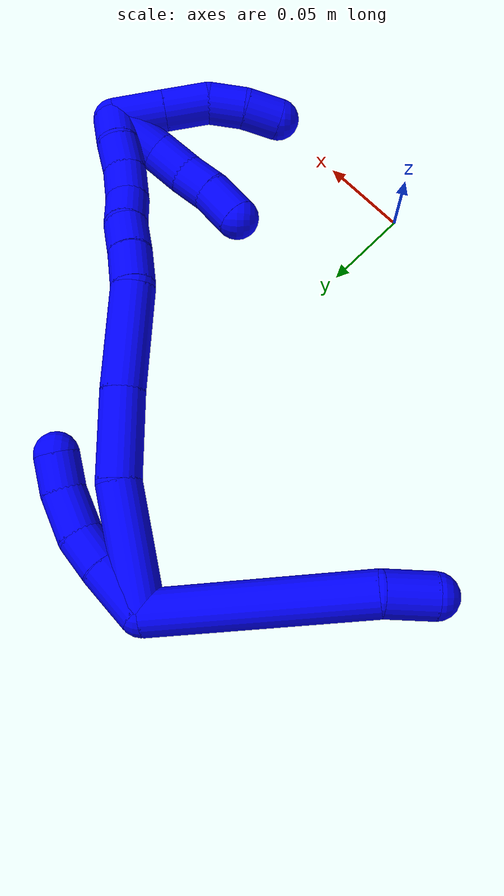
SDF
<sdf version="1.7">
 <world name="default">
  <model name="1">
   <static>0</static>
   <link name="1">
    <collision name="collision-cylinder-e_1_2_8">
     <pose>-0.004104 -0.012345 -0.059781 2.93795 -0.067135 -0.635069</pose>
     <geometry><cylinder><radius>0.0125</radius><length>0.12236</length></cylinder></geometry>
     <surface>
      <friction><ode><mu>1.16</mu><mu2>1.16</mu2><slip1>0</slip1><slip2>0</slip2></ode></friction>
      <contact><ode><kp>1e+06</kp><kd>1</kd><max_vel>0</max_vel><min_depth>0.001</min_depth></ode></contact>
     </surface>
    </collision>
    <visual name="visual-cylinder-e_1_2_8">
     <pose>-0.004104 -0.012345 -0.059781 2.93795 -0.067135 -0.635069</pose>
     <geometry><cylinder><radius>0.0125</radius><length>0.12236</length></cylinder></geometry>
     <material><ambient>0 0 1 1</ambient></material>
    </visual>
    <collision name="collision-cylinder-e_2_8_6">
     <pose>-0.007096 -0.023513 -0.133287 -3.05601 0.080572 -1.51048</pose>
     <geometry><cylinder><radius>0.0125</radius><length>0.02764</length></cylinder></geometry>
     <surface>
      <friction><ode><mu>1.16</mu><mu2>1.16</mu2><slip1>0</slip1><slip2>0</slip2></ode></friction>
      <contact><ode><kp>1e+06</kp><kd>1</kd><max_vel>0</max_vel><min_depth>0.001</min_depth></ode></contact>
     </surface>
    </collision>
    <visual name="visual-cylinder-e_2_8_6">
     <pose>-0.007096 -0.023513 -0.133287 -3.05601 0.080572 -1.51048</pose>
     <geometry><cylinder><radius>0.0125</radius><length>0.02764</length></cylinder></geometry>
     <material><ambient>0 0 1 1</ambient></material>
    </visual>
    <collision name="collision-cylinder-e_1_2_9">
     <pose>0.009877 -0.006652 0.010979 0.544739 0.65581 0.189467</pose>
     <geometry><cylinder><radius>0.0125</radius><length>0.032393</length></cylinder></geometry>
     <surface>
      <friction><ode><mu>1.16</mu><mu2>1.16</mu2><slip1>0</slip1><slip2>0</slip2></ode></friction>
      <contact><ode><kp>1e+06</kp><kd>1</kd><max_vel>0</max_vel><min_depth>0.001</min_depth></ode></contact>
     </surface>
    </collision>
    <visual name="visual-cylinder-e_1_2_9">
     <pose>0.009877 -0.006652 0.010979 0.544739 0.65581 0.189467</pose>
     <geometry><cylinder><radius>0.0125</radius><length>0.032393</length></cylinder></geometry>
     <material><ambient>0 0 1 1</ambient></material>
    </visual>
    <collision name="collision-cylinder-e_2_9_10">
     <pose>0.026715 -0.017657 0.028484 0.588223 0.72576 0.22901</pose>
     <geometry><cylinder><radius>0.0125</radius><length>0.020977</length></cylinder></geometry>
     <surface>
      <friction><ode><mu>1.16</mu><mu2>1.16</mu2><slip1>0</slip1><slip2>0</slip2></ode></friction>
      <contact><ode><kp>1e+06</kp><kd>1</kd><max_vel>0</max_vel><min_depth>0.001</min_depth></ode></contact>
     </surface>
    </collision>
    <visual name="visual-cylinder-e_2_9_10">
     <pose>0.026715 -0.017657 0.028484 0.588223 0.72576 0.22901</pose>
     <geometry><cylinder><radius>0.0125</radius><length>0.020977</length></cylinder></geometry>
     <material><ambient>0 0 1 1</ambient></material>
    </visual>
    <collision name="collision-cylinder-e_3_10_11">
     <pose>0.042689 -0.029679 0.040418 0.956717 0.765271 0.411478</pose>
     <geometry><cylinder><radius>0.0125</radius><length>0.026019</length></cylinder></geometry>
     <surface>
      <friction><ode><mu>1.16</mu><mu2>1.16</mu2><slip1>0</slip1><slip2>0</slip2></ode></friction>
      <contact><ode><kp>1e+06</kp><kd>1</kd><max_vel>0</max_vel><min_depth>0.001</min_depth></ode></contact>
     </surface>
    </collision>
    <visual name="visual-cylinder-e_3_10_11">
     <pose>0.042689 -0.029679 0.040418 0.956717 0.765271 0.411478</pose>
     <geometry><cylinder><radius>0.0125</radius><length>0.026019</length></cylinder></geometry>
     <material><ambient>0 0 1 1</ambient></material>
    </visual>
    <collision name="collision-cylinder-e_4_11_5">
     <pose>0.057991 -0.045135 0.048266 1.26689 0.656635 0.490278</pose>
     <geometry><cylinder><radius>0.0125</radius><length>0.02061</length></cylinder></geometry>
     <surface>
      <friction><ode><mu>1.16</mu><mu2>1.16</mu2><slip1>0</slip1><slip2>0</slip2></ode></friction>
      <contact><ode><kp>1e+06</kp><kd>1</kd><max_vel>0</max_vel><min_depth>0.001</min_depth></ode></contact>
     </surface>
    </collision>
    <visual name="visual-cylinder-e_4_11_5">
     <pose>0.057991 -0.045135 0.048266 1.26689 0.656635 0.490278</pose>
     <geometry><cylinder><radius>0.0125</radius><length>0.02061</length></cylinder></geometry>
     <material><ambient>0 0 1 1</ambient></material>
    </visual>
    <collision name="collision-cylinder-e_1_2_12">
     <pose>0.022365 -0.025089 0.007729 1.27196 0.705599 0.530873</pose>
     <geometry><cylinder><radius>0.0125</radius><length>0.068975</length></cylinder></geometry>
     <surface>
      <friction><ode><mu>1.16</mu><mu2>1.16</mu2><slip1>0</slip1><slip2>0</slip2></ode></friction>
      <contact><ode><kp>1e+06</kp><kd>1</kd><max_vel>0</max_vel><min_depth>0.001</min_depth></ode></contact>
     </surface>
    </collision>
    <visual name="visual-cylinder-e_1_2_12">
     <pose>0.022365 -0.025089 0.007729 1.27196 0.705599 0.530873</pose>
     <geometry><cylinder><radius>0.0125</radius><length>0.068975</length></cylinder></geometry>
     <material><ambient>0 0 1 1</ambient></material>
    </visual>
    <collision name="collision-cylinder-e_2_12_13">
     <pose>0.062107 -0.067505 0.01574 1.55451 0.786795 0.775327</pose>
     <geometry><cylinder><radius>0.0125</radius><length>0.049083</length></cylinder></geometry>
     <surface>
      <friction><ode><mu>1.16</mu><mu2>1.16</mu2><slip1>0</slip1><slip2>0</slip2></ode></friction>
      <contact><ode><kp>1e+06</kp><kd>1</kd><max_vel>0</max_vel><min_depth>0.001</min_depth></ode></contact>
     </surface>
    </collision>
    <visual name="visual-cylinder-e_2_12_13">
     <pose>0.062107 -0.067505 0.01574 1.55451 0.786795 0.775327</pose>
     <geometry><cylinder><radius>0.0125</radius><length>0.049083</length></cylinder></geometry>
     <material><ambient>0 0 1 1</ambient></material>
    </visual>
    <collision name="collision-cylinder-e_3_13_14">
     <pose>0.099725 -0.105926 0.014764 1.63036 0.763867 0.805982</pose>
     <geometry><cylinder><radius>0.0125</radius><length>0.058523</length></cylinder></geometry>
     <surface>
      <friction><ode><mu>1.16</mu><mu2>1.16</mu2><slip1>0</slip1><slip2>0</slip2></ode></friction>
      <contact><ode><kp>1e+06</kp><kd>1</kd><max_vel>0</max_vel><min_depth>0.001</min_depth></ode></contact>
     </surface>
    </collision>
    <visual name="visual-cylinder-e_3_13_14">
     <pose>0.099725 -0.105926 0.014764 1.63036 0.763867 0.805982</pose>
     <geometry><cylinder><radius>0.0125</radius><length>0.058523</length></cylinder></geometry>
     <material><ambient>0 0 1 1</ambient></material>
    </visual>
    <collision name="collision-cylinder-e_4_14_15">
     <pose>0.129593 -0.132763 0.015134 1.29457 1.01576 0.796503</pose>
     <geometry><cylinder><radius>0.0125</radius><length>0.022654</length></cylinder></geometry>
     <surface>
      <friction><ode><mu>1.16</mu><mu2>1.16</mu2><slip1>0</slip1><slip2>0</slip2></ode></friction>
      <contact><ode><kp>1e+06</kp><kd>1</kd><max_vel>0</max_vel><min_depth>0.001</min_depth></ode></contact>
     </surface>
    </collision>
    <visual name="visual-cylinder-e_4_14_15">
     <pose>0.129593 -0.132763 0.015134 1.29457 1.01576 0.796503</pose>
     <geometry><cylinder><radius>0.0125</radius><length>0.022654</length></cylinder></geometry>
     <material><ambient>0 0 1 1</ambient></material>
    </visual>
    <collision name="collision-cylinder-e_5_15_16">
     <pose>0.147904 -0.143077 0.018695 1.17086 1.05161 0.734514</pose>
     <geometry><cylinder><radius>0.0125</radius><length>0.020006</length></cylinder></geometry>
     <surface>
      <friction><ode><mu>1.16</mu><mu2>1.16</mu2><slip1>0</slip1><slip2>0</slip2></ode></friction>
      <contact><ode><kp>1e+06</kp><kd>1</kd><max_vel>0</max_vel><min_depth>0.001</min_depth></ode></contact>
     </surface>
    </collision>
    <visual name="visual-cylinder-e_5_15_16">
     <pose>0.147904 -0.143077 0.018695 1.17086 1.05161 0.734514</pose>
     <geometry><cylinder><radius>0.0125</radius><length>0.020006</length></cylinder></geometry>
     <material><ambient>0 0 1 1</ambient></material>
    </visual>
    <collision name="collision-cylinder-e_6_16_17">
     <pose>0.166291 -0.151173 0.020997 1.4662 1.22063 1.1241</pose>
     <geometry><cylinder><radius>0.0125</radius><length>0.020658</length></cylinder></geometry>
     <surface>
      <friction><ode><mu>1.16</mu><mu2>1.16</mu2><slip1>0</slip1><slip2>0</slip2></ode></friction>
      <contact><ode><kp>1e+06</kp><kd>1</kd><max_vel>0</max_vel><min_depth>0.001</min_depth></ode></contact>
     </surface>
    </collision>
    <visual name="visual-cylinder-e_6_16_17">
     <pose>0.166291 -0.151173 0.020997 1.4662 1.22063 1.1241</pose>
     <geometry><cylinder><radius>0.0125</radius><length>0.020658</length></cylinder></geometry>
     <material><ambient>0 0 1 1</ambient></material>
    </visual>
    <collision name="collision-cylinder-e_7_17_18">
     <pose>0.184276 -0.160149 0.022847 1.3058 0.972238 0.768115</pose>
     <geometry><cylinder><radius>0.0125</radius><length>0.020051</length></cylinder></geometry>
     <surface>
      <friction><ode><mu>1.16</mu><mu2>1.16</mu2><slip1>0</slip1><slip2>0</slip2></ode></friction>
      <contact><ode><kp>1e+06</kp><kd>1</kd><max_vel>0</max_vel><min_depth>0.001</min_depth></ode></contact>
     </surface>
    </collision>
    <visual name="visual-cylinder-e_7_17_18">
     <pose>0.184276 -0.160149 0.022847 1.3058 0.972238 0.768115</pose>
     <geometry><cylinder><radius>0.0125</radius><length>0.020051</length></cylinder></geometry>
     <material><ambient>0 0 1 1</ambient></material>
    </visual>
    <collision name="collision-cylinder-e_8_18_19">
     <pose>0.200255 -0.171466 0.026938 1.15185 0.875542 0.590133</pose>
     <geometry><cylinder><radius>0.0125</radius><length>0.020045</length></cylinder></geometry>
     <surface>
      <friction><ode><mu>1.16</mu><mu2>1.16</mu2><slip1>0</slip1><slip2>0</slip2></ode></friction>
      <contact><ode><kp>1e+06</kp><kd>1</kd><max_vel>0</max_vel><min_depth>0.001</min_depth></ode></contact>
     </surface>
    </collision>
    <visual name="visual-cylinder-e_8_18_19">
     <pose>0.200255 -0.171466 0.026938 1.15185 0.875542 0.590133</pose>
     <geometry><cylinder><radius>0.0125</radius><length>0.020045</length></cylinder></geometry>
     <material><ambient>0 0 1 1</ambient></material>
    </visual>
    <collision name="collision-cylinder-e_9_19_1">
     <pose>0.216772 -0.181644 0.031457 1.15441 1.07973 0.744088</pose>
     <geometry><cylinder><radius>0.0125</radius><length>0.020005</length></cylinder></geometry>
     <surface>
      <friction><ode><mu>1.16</mu><mu2>1.16</mu2><slip1>0</slip1><slip2>0</slip2></ode></friction>
      <contact><ode><kp>1e+06</kp><kd>1</kd><max_vel>0</max_vel><min_depth>0.001</min_depth></ode></contact>
     </surface>
    </collision>
    <visual name="visual-cylinder-e_9_19_1">
     <pose>0.216772 -0.181644 0.031457 1.15441 1.07973 0.744088</pose>
     <geometry><cylinder><radius>0.0125</radius><length>0.020005</length></cylinder></geometry>
     <material><ambient>0 0 1 1</ambient></material>
    </visual>
    <collision name="collision-cylinder-e_1_1_20">
     <pose>0.227992 -0.188341 0.018688 2.98063 0.159988 1.56469</pose>
     <geometry><cylinder><radius>0.0125</radius><length>0.030123</length></cylinder></geometry>
     <surface>
      <friction><ode><mu>1.16</mu><mu2>1.16</mu2><slip1>0</slip1><slip2>0</slip2></ode></friction>
      <contact><ode><kp>1e+06</kp><kd>1</kd><max_vel>0</max_vel><min_depth>0.001</min_depth></ode></contact>
     </surface>
    </collision>
    <visual name="visual-cylinder-e_1_1_20">
     <pose>0.227992 -0.188341 0.018688 2.98063 0.159988 1.56469</pose>
     <geometry><cylinder><radius>0.0125</radius><length>0.030123</length></cylinder></geometry>
     <material><ambient>0 0 1 1</ambient></material>
    </visual>
    <collision name="collision-cylinder-e_2_20_21">
     <pose>0.232413 -0.192822 -0.009166 2.98376 0.150412 1.52245</pose>
     <geometry><cylinder><radius>0.0125</radius><length>0.026992</length></cylinder></geometry>
     <surface>
      <friction><ode><mu>1.16</mu><mu2>1.16</mu2><slip1>0</slip1><slip2>0</slip2></ode></friction>
      <contact><ode><kp>1e+06</kp><kd>1</kd><max_vel>0</max_vel><min_depth>0.001</min_depth></ode></contact>
     </surface>
    </collision>
    <visual name="visual-cylinder-e_2_20_21">
     <pose>0.232413 -0.192822 -0.009166 2.98376 0.150412 1.52245</pose>
     <geometry><cylinder><radius>0.0125</radius><length>0.026992</length></cylinder></geometry>
     <material><ambient>0 0 1 1</ambient></material>
    </visual>
    <collision name="collision-cylinder-e_3_21_22">
     <pose>0.234047 -0.193771 -0.03304 -3.03466 -0.036112 0.650881</pose>
     <geometry><cylinder><radius>0.0125</radius><length>0.021527</length></cylinder></geometry>
     <surface>
      <friction><ode><mu>1.16</mu><mu2>1.16</mu2><slip1>0</slip1><slip2>0</slip2></ode></friction>
      <contact><ode><kp>1e+06</kp><kd>1</kd><max_vel>0</max_vel><min_depth>0.001</min_depth></ode></contact>
     </surface>
    </collision>
    <visual name="visual-cylinder-e_3_21_22">
     <pose>0.234047 -0.193771 -0.03304 -3.03466 -0.036112 0.650881</pose>
     <geometry><cylinder><radius>0.0125</radius><length>0.021527</length></cylinder></geometry>
     <material><ambient>0 0 1 1</ambient></material>
    </visual>
    <collision name="collision-cylinder-e_4_22_4">
     <pose>0.233855 -0.189467 -0.053935 -2.84149 0.018405 -0.121592</pose>
     <geometry><cylinder><radius>0.0125</radius><length>0.021358</length></cylinder></geometry>
     <surface>
      <friction><ode><mu>1.16</mu><mu2>1.16</mu2><slip1>0</slip1><slip2>0</slip2></ode></friction>
      <contact><ode><kp>1e+06</kp><kd>1</kd><max_vel>0</max_vel><min_depth>0.001</min_depth></ode></contact>
     </surface>
    </collision>
    <visual name="visual-cylinder-e_4_22_4">
     <pose>0.233855 -0.189467 -0.053935 -2.84149 0.018405 -0.121592</pose>
     <geometry><cylinder><radius>0.0125</radius><length>0.021358</length></cylinder></geometry>
     <material><ambient>0 0 1 1</ambient></material>
    </visual>
    <collision name="collision-cylinder-e_1_1_23">
     <pose>0.220174 -0.178222 0.01989 -2.62043 -0.335516 1.13168</pose>
     <geometry><cylinder><radius>0.0125</radius><length>0.032911</length></cylinder></geometry>
     <surface>
      <friction><ode><mu>1.16</mu><mu2>1.16</mu2><slip1>0</slip1><slip2>0</slip2></ode></friction>
      <contact><ode><kp>1e+06</kp><kd>1</kd><max_vel>0</max_vel><min_depth>0.001</min_depth></ode></contact>
     </surface>
    </collision>
    <visual name="visual-cylinder-e_1_1_23">
     <pose>0.220174 -0.178222 0.01989 -2.62043 -0.335516 1.13168</pose>
     <geometry><cylinder><radius>0.0125</radius><length>0.032911</length></cylinder></geometry>
     <material><ambient>0 0 1 1</ambient></material>
    </visual>
    <collision name="collision-cylinder-e_2_23_24">
     <pose>0.208881 -0.165714 -0.00237 -2.64398 -0.531304 1.63924</pose>
     <geometry><cylinder><radius>0.0125</radius><length>0.023192</length></cylinder></geometry>
     <surface>
      <friction><ode><mu>1.16</mu><mu2>1.16</mu2><slip1>0</slip1><slip2>0</slip2></ode></friction>
      <contact><ode><kp>1e+06</kp><kd>1</kd><max_vel>0</max_vel><min_depth>0.001</min_depth></ode></contact>
     </surface>
    </collision>
    <visual name="visual-cylinder-e_2_23_24">
     <pose>0.208881 -0.165714 -0.00237 -2.64398 -0.531304 1.63924</pose>
     <geometry><cylinder><radius>0.0125</radius><length>0.023192</length></cylinder></geometry>
     <material><ambient>0 0 1 1</ambient></material>
    </visual>
    <collision name="collision-cylinder-e_3_24_25">
     <pose>0.197041 -0.158034 -0.018705 -2.77391 -0.635298 2.11219</pose>
     <geometry><cylinder><radius>0.0125</radius><length>0.020102</length></cylinder></geometry>
     <surface>
      <friction><ode><mu>1.16</mu><mu2>1.16</mu2><slip1>0</slip1><slip2>0</slip2></ode></friction>
      <contact><ode><kp>1e+06</kp><kd>1</kd><max_vel>0</max_vel><min_depth>0.001</min_depth></ode></contact>
     </surface>
    </collision>
    <visual name="visual-cylinder-e_3_24_25">
     <pose>0.197041 -0.158034 -0.018705 -2.77391 -0.635298 2.11219</pose>
     <geometry><cylinder><radius>0.0125</radius><length>0.020102</length></cylinder></geometry>
     <material><ambient>0 0 1 1</ambient></material>
    </visual>
    <collision name="collision-cylinder-e_4_25_3">
     <pose>0.183343 -0.15048 -0.03401 -2.60194 -0.707585 1.85607</pose>
     <geometry><cylinder><radius>0.0125</radius><length>0.023795</length></cylinder></geometry>
     <surface>
      <friction><ode><mu>1.16</mu><mu2>1.16</mu2><slip1>0</slip1><slip2>0</slip2></ode></friction>
      <contact><ode><kp>1e+06</kp><kd>1</kd><max_vel>0</max_vel><min_depth>0.001</min_depth></ode></contact>
     </surface>
    </collision>
    <visual name="visual-cylinder-e_4_25_3">
     <pose>0.183343 -0.15048 -0.03401 -2.60194 -0.707585 1.85607</pose>
     <geometry><cylinder><radius>0.0125</radius><length>0.023795</length></cylinder></geometry>
     <material><ambient>0 0 1 1</ambient></material>
    </visual>
    <collision name="collision-sphere-3">
     <pose>0.17561 -0.145834 -0.041767 0 -0 0</pose>
     <geometry><sphere><radius>0.0125</radius></sphere></geometry>
     <surface>
      <friction><ode><mu>1.16</mu><mu2>1.16</mu2><slip1>0</slip1><slip2>0</slip2></ode></friction>
      <contact><ode><kp>1e+06</kp><kd>1</kd><max_vel>0</max_vel><min_depth>0.001</min_depth></ode></contact>
     </surface>
    </collision>
    <visual name="visual-sphere-3">
     <pose>0.17561 -0.145834 -0.041767 0 -0 0</pose>
     <geometry><sphere><radius>0.0125</radius></sphere></geometry>
     <material><ambient>0 0 1 1</ambient></material>
    </visual>
    <collision name="collision-sphere-25">
     <pose>0.191077 -0.155126 -0.026254 0 -0 0</pose>
     <geometry><sphere><radius>0.0125</radius></sphere></geometry>
     <surface>
      <friction><ode><mu>1.16</mu><mu2>1.16</mu2><slip1>0</slip1><slip2>0</slip2></ode></friction>
      <contact><ode><kp>1e+06</kp><kd>1</kd><max_vel>0</max_vel><min_depth>0.001</min_depth></ode></contact>
     </surface>
    </collision>
    <visual name="visual-sphere-25">
     <pose>0.191077 -0.155126 -0.026254 0 -0 0</pose>
     <geometry><sphere><radius>0.0125</radius></sphere></geometry>
     <material><ambient>0 0 1 1</ambient></material>
    </visual>
    <collision name="collision-sphere-24">
     <pose>0.203006 -0.160942 -0.011155 0 -0 0</pose>
     <geometry><sphere><radius>0.0125</radius></sphere></geometry>
     <surface>
      <friction><ode><mu>1.16</mu><mu2>1.16</mu2><slip1>0</slip1><slip2>0</slip2></ode></friction>
      <contact><ode><kp>1e+06</kp><kd>1</kd><max_vel>0</max_vel><min_depth>0.001</min_depth></ode></contact>
     </surface>
    </collision>
    <visual name="visual-sphere-24">
     <pose>0.203006 -0.160942 -0.011155 0 -0 0</pose>
     <geometry><sphere><radius>0.0125</radius></sphere></geometry>
     <material><ambient>0 0 1 1</ambient></material>
    </visual>
    <collision name="collision-sphere-23">
     <pose>0.214756 -0.170486 0.006415 0 -0 0</pose>
     <geometry><sphere><radius>0.0125</radius></sphere></geometry>
     <surface>
      <friction><ode><mu>1.16</mu><mu2>1.16</mu2><slip1>0</slip1><slip2>0</slip2></ode></friction>
      <contact><ode><kp>1e+06</kp><kd>1</kd><max_vel>0</max_vel><min_depth>0.001</min_depth></ode></contact>
     </surface>
    </collision>
    <visual name="visual-sphere-23">
     <pose>0.214756 -0.170486 0.006415 0 -0 0</pose>
     <geometry><sphere><radius>0.0125</radius></sphere></geometry>
     <material><ambient>0 0 1 1</ambient></material>
    </visual>
    <collision name="collision-sphere-4">
     <pose>0.234052 -0.186311 -0.064134 0 -0 0</pose>
     <geometry><sphere><radius>0.0125</radius></sphere></geometry>
     <surface>
      <friction><ode><mu>1.16</mu><mu2>1.16</mu2><slip1>0</slip1><slip2>0</slip2></ode></friction>
      <contact><ode><kp>1e+06</kp><kd>1</kd><max_vel>0</max_vel><min_depth>0.001</min_depth></ode></contact>
     </surface>
    </collision>
    <visual name="visual-sphere-4">
     <pose>0.234052 -0.186311 -0.064134 0 -0 0</pose>
     <geometry><sphere><radius>0.0125</radius></sphere></geometry>
     <material><ambient>0 0 1 1</ambient></material>
    </visual>
    <collision name="collision-sphere-22">
     <pose>0.233658 -0.192623 -0.043735 0 -0 0</pose>
     <geometry><sphere><radius>0.0125</radius></sphere></geometry>
     <surface>
      <friction><ode><mu>1.16</mu><mu2>1.16</mu2><slip1>0</slip1><slip2>0</slip2></ode></friction>
      <contact><ode><kp>1e+06</kp><kd>1</kd><max_vel>0</max_vel><min_depth>0.001</min_depth></ode></contact>
     </surface>
    </collision>
    <visual name="visual-sphere-22">
     <pose>0.233658 -0.192623 -0.043735 0 -0 0</pose>
     <geometry><sphere><radius>0.0125</radius></sphere></geometry>
     <material><ambient>0 0 1 1</ambient></material>
    </visual>
    <collision name="collision-sphere-21">
     <pose>0.234436 -0.194919 -0.022344 0 -0 0</pose>
     <geometry><sphere><radius>0.0125</radius></sphere></geometry>
     <surface>
      <friction><ode><mu>1.16</mu><mu2>1.16</mu2><slip1>0</slip1><slip2>0</slip2></ode></friction>
      <contact><ode><kp>1e+06</kp><kd>1</kd><max_vel>0</max_vel><min_depth>0.001</min_depth></ode></contact>
     </surface>
    </collision>
    <visual name="visual-sphere-21">
     <pose>0.234436 -0.194919 -0.022344 0 -0 0</pose>
     <geometry><sphere><radius>0.0125</radius></sphere></geometry>
     <material><ambient>0 0 1 1</ambient></material>
    </visual>
    <collision name="collision-sphere-20">
     <pose>0.230391 -0.190724 0.004012 0 -0 0</pose>
     <geometry><sphere><radius>0.0125</radius></sphere></geometry>
     <surface>
      <friction><ode><mu>1.16</mu><mu2>1.16</mu2><slip1>0</slip1><slip2>0</slip2></ode></friction>
      <contact><ode><kp>1e+06</kp><kd>1</kd><max_vel>0</max_vel><min_depth>0.001</min_depth></ode></contact>
     </surface>
    </collision>
    <visual name="visual-sphere-20">
     <pose>0.230391 -0.190724 0.004012 0 -0 0</pose>
     <geometry><sphere><radius>0.0125</radius></sphere></geometry>
     <material><ambient>0 0 1 1</ambient></material>
    </visual>
    <collision name="collision-sphere-11">
     <pose>0.051701 -0.037347 0.045824 0 -0 0</pose>
     <geometry><sphere><radius>0.0125</radius></sphere></geometry>
     <surface>
      <friction><ode><mu>1.16</mu><mu2>1.16</mu2><slip1>0</slip1><slip2>0</slip2></ode></friction>
      <contact><ode><kp>1e+06</kp><kd>1</kd><max_vel>0</max_vel><min_depth>0.001</min_depth></ode></contact>
     </surface>
    </collision>
    <visual name="visual-sphere-11">
     <pose>0.051701 -0.037347 0.045824 0 -0 0</pose>
     <geometry><sphere><radius>0.0125</radius></sphere></geometry>
     <material><ambient>0 0 1 1</ambient></material>
    </visual>
    <collision name="collision-sphere-10">
     <pose>0.033676 -0.022011 0.035011 0 -0 0</pose>
     <geometry><sphere><radius>0.0125</radius></sphere></geometry>
     <surface>
      <friction><ode><mu>1.16</mu><mu2>1.16</mu2><slip1>0</slip1><slip2>0</slip2></ode></friction>
      <contact><ode><kp>1e+06</kp><kd>1</kd><max_vel>0</max_vel><min_depth>0.001</min_depth></ode></contact>
     </surface>
    </collision>
    <visual name="visual-sphere-10">
     <pose>0.033676 -0.022011 0.035011 0 -0 0</pose>
     <geometry><sphere><radius>0.0125</radius></sphere></geometry>
     <material><ambient>0 0 1 1</ambient></material>
    </visual>
    <collision name="collision-sphere-6">
     <pose>-0.005984 -0.022335 -0.147011 0 -0 0</pose>
     <geometry><sphere><radius>0.0125</radius></sphere></geometry>
     <surface>
      <friction><ode><mu>1.16</mu><mu2>1.16</mu2><slip1>0</slip1><slip2>0</slip2></ode></friction>
      <contact><ode><kp>1e+06</kp><kd>1</kd><max_vel>0</max_vel><min_depth>0.001</min_depth></ode></contact>
     </surface>
    </collision>
    <visual name="visual-sphere-6">
     <pose>-0.005984 -0.022335 -0.147011 0 -0 0</pose>
     <geometry><sphere><radius>0.0125</radius></sphere></geometry>
     <material><ambient>0 0 1 1</ambient></material>
    </visual>
    <collision name="collision-sphere-9">
     <pose>0.019754 -0.013304 0.021958 0 -0 0</pose>
     <geometry><sphere><radius>0.0125</radius></sphere></geometry>
     <surface>
      <friction><ode><mu>1.16</mu><mu2>1.16</mu2><slip1>0</slip1><slip2>0</slip2></ode></friction>
      <contact><ode><kp>1e+06</kp><kd>1</kd><max_vel>0</max_vel><min_depth>0.001</min_depth></ode></contact>
     </surface>
    </collision>
    <visual name="visual-sphere-9">
     <pose>0.019754 -0.013304 0.021958 0 -0 0</pose>
     <geometry><sphere><radius>0.0125</radius></sphere></geometry>
     <material><ambient>0 0 1 1</ambient></material>
    </visual>
    <collision name="collision-sphere-2">
     <geometry><sphere><radius>0.0125</radius></sphere></geometry>
     <surface>
      <friction><ode><mu>1.16</mu><mu2>1.16</mu2><slip1>0</slip1><slip2>0</slip2></ode></friction>
      <contact><ode><kp>1e+06</kp><kd>1</kd><max_vel>0</max_vel><min_depth>0.001</min_depth></ode></contact>
     </surface>
    </collision>
    <visual name="visual-sphere-2">
     <geometry><sphere><radius>0.0125</radius></sphere></geometry>
     <material><ambient>0 0 1 1</ambient></material>
    </visual>
    <collision name="collision-sphere-19">
     <pose>0.207951 -0.17733 0.029549 0 -0 0</pose>
     <geometry><sphere><radius>0.0125</radius></sphere></geometry>
     <surface>
      <friction><ode><mu>1.16</mu><mu2>1.16</mu2><slip1>0</slip1><slip2>0</slip2></ode></friction>
      <contact><ode><kp>1e+06</kp><kd>1</kd><max_vel>0</max_vel><min_depth>0.001</min_depth></ode></contact>
     </surface>
    </collision>
    <visual name="visual-sphere-19">
     <pose>0.207951 -0.17733 0.029549 0 -0 0</pose>
     <geometry><sphere><radius>0.0125</radius></sphere></geometry>
     <material><ambient>0 0 1 1</ambient></material>
    </visual>
    <collision name="collision-sphere-8">
     <pose>-0.008208 -0.02469 -0.119562 0 -0 0</pose>
     <geometry><sphere><radius>0.0125</radius></sphere></geometry>
     <surface>
      <friction><ode><mu>1.16</mu><mu2>1.16</mu2><slip1>0</slip1><slip2>0</slip2></ode></friction>
      <contact><ode><kp>1e+06</kp><kd>1</kd><max_vel>0</max_vel><min_depth>0.001</min_depth></ode></contact>
     </surface>
    </collision>
    <visual name="visual-sphere-8">
     <pose>-0.008208 -0.02469 -0.119562 0 -0 0</pose>
     <geometry><sphere><radius>0.0125</radius></sphere></geometry>
     <material><ambient>0 0 1 1</ambient></material>
    </visual>
    <collision name="collision-sphere-5">
     <pose>0.064282 -0.052923 0.050709 0 -0 0</pose>
     <geometry><sphere><radius>0.0125</radius></sphere></geometry>
     <surface>
      <friction><ode><mu>1.16</mu><mu2>1.16</mu2><slip1>0</slip1><slip2>0</slip2></ode></friction>
      <contact><ode><kp>1e+06</kp><kd>1</kd><max_vel>0</max_vel><min_depth>0.001</min_depth></ode></contact>
     </surface>
    </collision>
    <visual name="visual-sphere-5">
     <pose>0.064282 -0.052923 0.050709 0 -0 0</pose>
     <geometry><sphere><radius>0.0125</radius></sphere></geometry>
     <material><ambient>0 0 1 1</ambient></material>
    </visual>
    <collision name="collision-sphere-12">
     <pose>0.044729 -0.050178 0.015458 0 -0 0</pose>
     <geometry><sphere><radius>0.0125</radius></sphere></geometry>
     <surface>
      <friction><ode><mu>1.16</mu><mu2>1.16</mu2><slip1>0</slip1><slip2>0</slip2></ode></friction>
      <contact><ode><kp>1e+06</kp><kd>1</kd><max_vel>0</max_vel><min_depth>0.001</min_depth></ode></contact>
     </surface>
    </collision>
    <visual name="visual-sphere-12">
     <pose>0.044729 -0.050178 0.015458 0 -0 0</pose>
     <geometry><sphere><radius>0.0125</radius></sphere></geometry>
     <material><ambient>0 0 1 1</ambient></material>
    </visual>
    <collision name="collision-sphere-13">
     <pose>0.079485 -0.084832 0.016022 0 -0 0</pose>
     <geometry><sphere><radius>0.0125</radius></sphere></geometry>
     <surface>
      <friction><ode><mu>1.16</mu><mu2>1.16</mu2><slip1>0</slip1><slip2>0</slip2></ode></friction>
      <contact><ode><kp>1e+06</kp><kd>1</kd><max_vel>0</max_vel><min_depth>0.001</min_depth></ode></contact>
     </surface>
    </collision>
    <visual name="visual-sphere-13">
     <pose>0.079485 -0.084832 0.016022 0 -0 0</pose>
     <geometry><sphere><radius>0.0125</radius></sphere></geometry>
     <material><ambient>0 0 1 1</ambient></material>
    </visual>
    <collision name="collision-sphere-14">
     <pose>0.119966 -0.12702 0.013506 0 -0 0</pose>
     <geometry><sphere><radius>0.0125</radius></sphere></geometry>
     <surface>
      <friction><ode><mu>1.16</mu><mu2>1.16</mu2><slip1>0</slip1><slip2>0</slip2></ode></friction>
      <contact><ode><kp>1e+06</kp><kd>1</kd><max_vel>0</max_vel><min_depth>0.001</min_depth></ode></contact>
     </surface>
    </collision>
    <visual name="visual-sphere-14">
     <pose>0.119966 -0.12702 0.013506 0 -0 0</pose>
     <geometry><sphere><radius>0.0125</radius></sphere></geometry>
     <material><ambient>0 0 1 1</ambient></material>
    </visual>
    <collision name="collision-sphere-15">
     <pose>0.139219 -0.138506 0.016762 0 -0 0</pose>
     <geometry><sphere><radius>0.0125</radius></sphere></geometry>
     <surface>
      <friction><ode><mu>1.16</mu><mu2>1.16</mu2><slip1>0</slip1><slip2>0</slip2></ode></friction>
      <contact><ode><kp>1e+06</kp><kd>1</kd><max_vel>0</max_vel><min_depth>0.001</min_depth></ode></contact>
     </surface>
    </collision>
    <visual name="visual-sphere-15">
     <pose>0.139219 -0.138506 0.016762 0 -0 0</pose>
     <geometry><sphere><radius>0.0125</radius></sphere></geometry>
     <material><ambient>0 0 1 1</ambient></material>
    </visual>
    <collision name="collision-sphere-16">
     <pose>0.156589 -0.147649 0.020627 0 -0 0</pose>
     <geometry><sphere><radius>0.0125</radius></sphere></geometry>
     <surface>
      <friction><ode><mu>1.16</mu><mu2>1.16</mu2><slip1>0</slip1><slip2>0</slip2></ode></friction>
      <contact><ode><kp>1e+06</kp><kd>1</kd><max_vel>0</max_vel><min_depth>0.001</min_depth></ode></contact>
     </surface>
    </collision>
    <visual name="visual-sphere-16">
     <pose>0.156589 -0.147649 0.020627 0 -0 0</pose>
     <geometry><sphere><radius>0.0125</radius></sphere></geometry>
     <material><ambient>0 0 1 1</ambient></material>
    </visual>
    <collision name="collision-sphere-17">
     <pose>0.175994 -0.154697 0.021367 0 -0 0</pose>
     <geometry><sphere><radius>0.0125</radius></sphere></geometry>
     <surface>
      <friction><ode><mu>1.16</mu><mu2>1.16</mu2><slip1>0</slip1><slip2>0</slip2></ode></friction>
      <contact><ode><kp>1e+06</kp><kd>1</kd><max_vel>0</max_vel><min_depth>0.001</min_depth></ode></contact>
     </surface>
    </collision>
    <visual name="visual-sphere-17">
     <pose>0.175994 -0.154697 0.021367 0 -0 0</pose>
     <geometry><sphere><radius>0.0125</radius></sphere></geometry>
     <material><ambient>0 0 1 1</ambient></material>
    </visual>
    <collision name="collision-sphere-18">
     <pose>0.192559 -0.165601 0.024326 0 -0 0</pose>
     <geometry><sphere><radius>0.0125</radius></sphere></geometry>
     <surface>
      <friction><ode><mu>1.16</mu><mu2>1.16</mu2><slip1>0</slip1><slip2>0</slip2></ode></friction>
      <contact><ode><kp>1e+06</kp><kd>1</kd><max_vel>0</max_vel><min_depth>0.001</min_depth></ode></contact>
     </surface>
    </collision>
    <visual name="visual-sphere-18">
     <pose>0.192559 -0.165601 0.024326 0 -0 0</pose>
     <geometry><sphere><radius>0.0125</radius></sphere></geometry>
     <material><ambient>0 0 1 1</ambient></material>
    </visual>
    <collision name="collision-sphere-1">
     <pose>0.225592 -0.185958 0.033365 0 -0 0</pose>
     <geometry><sphere><radius>0.0125</radius></sphere></geometry>
     <surface>
      <friction><ode><mu>1.16</mu><mu2>1.16</mu2><slip1>0</slip1><slip2>0</slip2></ode></friction>
      <contact><ode><kp>1e+06</kp><kd>1</kd><max_vel>0</max_vel><min_depth>0.001</min_depth></ode></contact>
     </surface>
    </collision>
    <visual name="visual-sphere-1">
     <pose>0.225592 -0.185958 0.033365 0 -0 0</pose>
     <geometry><sphere><radius>0.0125</radius></sphere></geometry>
     <material><ambient>0 0 1 1</ambient></material>
    </visual>
    <inertial>
     <pose>0.103839 -0.094039 -0.006913 0 -0 0</pose>
     <mass>0.75</mass>
     <inertia>
      <ixx>0.000146</ixx>
      <ixy>0</ixy>
      <ixz>0</ixz>
      <iyy>-0.000143</iyy>
      <iyz>0</iyz>
      <izz>2.2e-05</izz>
     </inertia>
    </inertial>
   </link>
   <pose>-0.064455 0.265506 0.022813 -1.56134 0.707092 -0.811482</pose>
  </model>
 </world>
</sdf>
